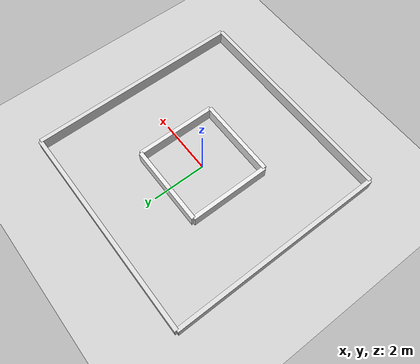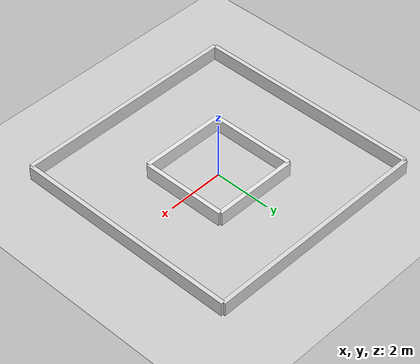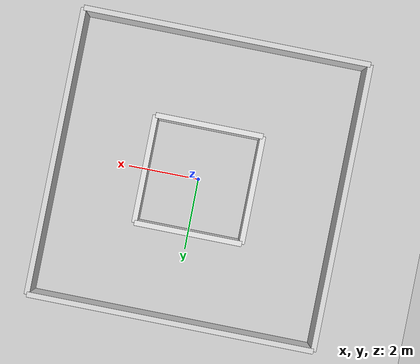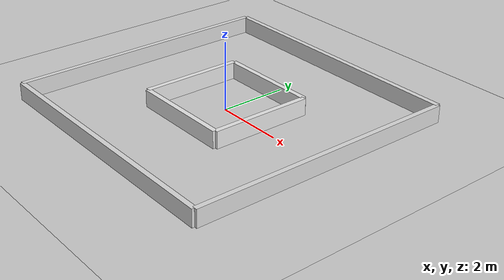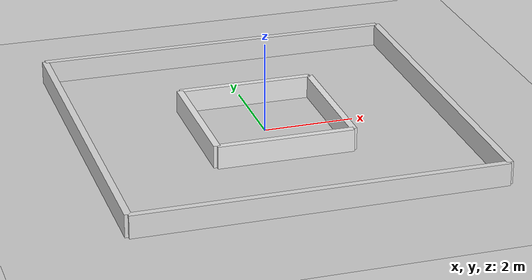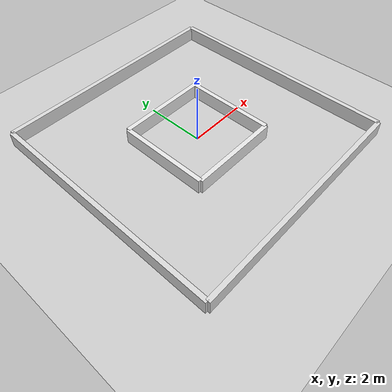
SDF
<?xml version="1.0" ?>
<sdf version="1.6">
  <world name="looped_square_tunnel_world">

    <physics name="default_physics" default="0" type="ode">
      <max_step_size>0.001</max_step_size>
      <real_time_factor>1.0</real_time_factor>
      <real_time_update_rate>1000</real_time_update_rate>
    </physics>

    <include>
      <uri>model://ground_plane</uri>
    </include>

    <include>
      <uri>model://sun</uri>
    </include>

    <!-- OUTER SQUARE WALLS -->
    <!-- Bigger square boundary -->
    <!-- Wall height changed from 1.0 to 0.5 -->
    <!-- Since height = 0.5, pose z = 0.25 -->

    <!-- Outer North Wall -->
    <model name="outer_north_wall">
      <static>true</static>
      <pose>0 4.0 0.25 0 0 0</pose>
      <link name="link">
        <collision name="collision">
          <geometry>
            <box>
              <size>8.0 0.15 0.5</size>
            </box>
          </geometry>
        </collision>
        <visual name="visual">
          <geometry>
            <box>
              <size>8.0 0.15 0.5</size>
            </box>
          </geometry>
          <material>
            <ambient>0.85 0.85 0.85 1</ambient>
            <diffuse>0.85 0.85 0.85 1</diffuse>
            <specular>0.2 0.2 0.2 1</specular>
          </material>
        </visual>
      </link>
    </model>

    <!-- Outer South Wall -->
    <model name="outer_south_wall">
      <static>true</static>
      <pose>0 -4.0 0.25 0 0 0</pose>
      <link name="link">
        <collision name="collision">
          <geometry>
            <box>
              <size>8.0 0.15 0.5</size>
            </box>
          </geometry>
        </collision>
        <visual name="visual">
          <geometry>
            <box>
              <size>8.0 0.15 0.5</size>
            </box>
          </geometry>
          <material>
            <ambient>0.85 0.85 0.85 1</ambient>
            <diffuse>0.85 0.85 0.85 1</diffuse>
            <specular>0.2 0.2 0.2 1</specular>
          </material>
        </visual>
      </link>
    </model>

    <!-- Outer East Wall -->
    <model name="outer_east_wall">
      <static>true</static>
      <pose>4.0 0 0.25 0 0 0</pose>
      <link name="link">
        <collision name="collision">
          <geometry>
            <box>
              <size>0.15 8.0 0.5</size>
            </box>
          </geometry>
        </collision>
        <visual name="visual">
          <geometry>
            <box>
              <size>0.15 8.0 0.5</size>
            </box>
          </geometry>
          <material>
            <ambient>0.85 0.85 0.85 1</ambient>
            <diffuse>0.85 0.85 0.85 1</diffuse>
            <specular>0.2 0.2 0.2 1</specular>
          </material>
        </visual>
      </link>
    </model>

    <!-- Outer West Wall -->
    <model name="outer_west_wall">
      <static>true</static>
      <pose>-4.0 0 0.25 0 0 0</pose>
      <link name="link">
        <collision name="collision">
          <geometry>
            <box>
              <size>0.15 8.0 0.5</size>
            </box>
          </geometry>
        </collision>
        <visual name="visual">
          <geometry>
            <box>
              <size>0.15 8.0 0.5</size>
            </box>
          </geometry>
          <material>
            <ambient>0.85 0.85 0.85 1</ambient>
            <diffuse>0.85 0.85 0.85 1</diffuse>
            <specular>0.2 0.2 0.2 1</specular>
          </material>
        </visual>
      </link>
    </model>

    <!-- INNER SQUARE WALLS -->
    <!-- Smaller square obstacle inside the bigger square -->
    <!-- Robot can follow the loop around this inner square -->

    <!-- Inner North Wall -->
    <model name="inner_north_wall">
      <static>true</static>
      <pose>0 1.5 0.25 0 0 0</pose>
      <link name="link">
        <collision name="collision">
          <geometry>
            <box>
              <size>3.0 0.15 0.5</size>
            </box>
          </geometry>
        </collision>
        <visual name="visual">
          <geometry>
            <box>
              <size>3.0 0.15 0.5</size>
            </box>
          </geometry>
          <material>
            <ambient>0.9 0.9 0.9 1</ambient>
            <diffuse>0.9 0.9 0.9 1</diffuse>
            <specular>0.2 0.2 0.2 1</specular>
          </material>
        </visual>
      </link>
    </model>

    <!-- Inner South Wall -->
    <model name="inner_south_wall">
      <static>true</static>
      <pose>0 -1.5 0.25 0 0 0</pose>
      <link name="link">
        <collision name="collision">
          <geometry>
            <box>
              <size>3.0 0.15 0.5</size>
            </box>
          </geometry>
        </collision>
        <visual name="visual">
          <geometry>
            <box>
              <size>3.0 0.15 0.5</size>
            </box>
          </geometry>
          <material>
            <ambient>0.9 0.9 0.9 1</ambient>
            <diffuse>0.9 0.9 0.9 1</diffuse>
            <specular>0.2 0.2 0.2 1</specular>
          </material>
        </visual>
      </link>
    </model>

    <!-- Inner East Wall -->
    <model name="inner_east_wall">
      <static>true</static>
      <pose>1.5 0 0.25 0 0 0</pose>
      <link name="link">
        <collision name="collision">
          <geometry>
            <box>
              <size>0.15 3.0 0.5</size>
            </box>
          </geometry>
        </collision>
        <visual name="visual">
          <geometry>
            <box>
              <size>0.15 3.0 0.5</size>
            </box>
          </geometry>
          <material>
            <ambient>0.9 0.9 0.9 1</ambient>
            <diffuse>0.9 0.9 0.9 1</diffuse>
            <specular>0.2 0.2 0.2 1</specular>
          </material>
        </visual>
      </link>
    </model>

    <!-- Inner West Wall -->
    <model name="inner_west_wall">
      <static>true</static>
      <pose>-1.5 0 0.25 0 0 0</pose>
      <link name="link">
        <collision name="collision">
          <geometry>
            <box>
              <size>0.15 3.0 0.5</size>
            </box>
          </geometry>
        </collision>
        <visual name="visual">
          <geometry>
            <box>
              <size>0.15 3.0 0.5</size>
            </box>
          </geometry>
          <material>
            <ambient>0.9 0.9 0.9 1</ambient>
            <diffuse>0.9 0.9 0.9 1</diffuse>
            <specular>0.2 0.2 0.2 1</specular>
          </material>
        </visual>
      </link>
    </model>

  </world>
</sdf>
